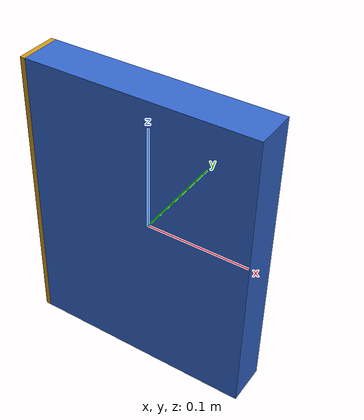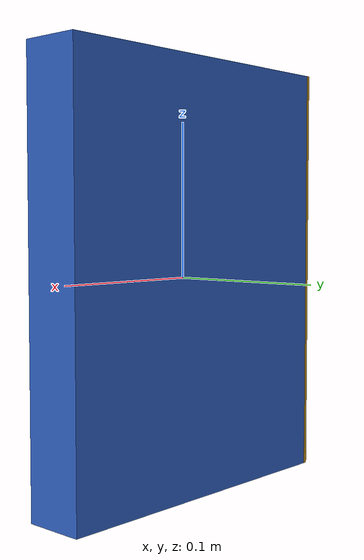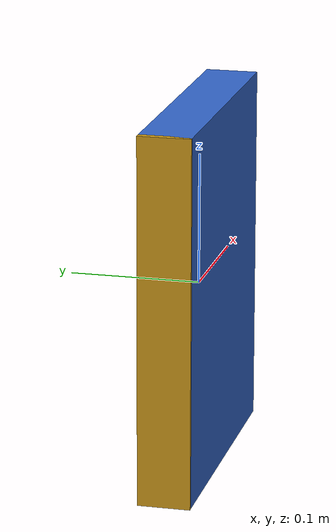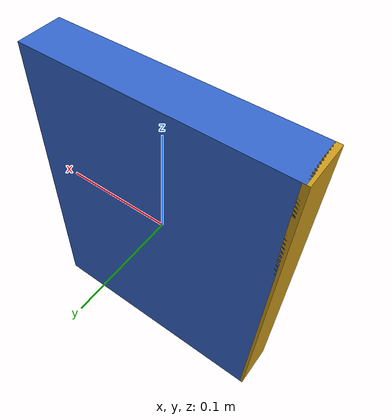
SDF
<?xml version="1.0"?>
<sdf version="1.6">
  <model name="book">
    <static>true</static>
    <link name="link">
      <pose>0 0 0 0 0 0</pose>
      <inertial>
        <mass>0.3</mass>
        <inertia>
          <ixx>0.000434</ixx><ixy>0</ixy><ixz>0</ixz>
          <iyy>0.000447</iyy><iyz>0</iyz>
          <izz>0.000033</izz>
        </inertia>
      </inertial>
      <collision name="collision">
        <geometry>
          <box><size>0.22 0.04 0.28</size></box>
        </geometry>
      </collision>
      <visual name="visual">
        <geometry>
          <box><size>0.22 0.04 0.28</size></box>
        </geometry>
        <material>
          <ambient>0.2 0.4 0.8 1</ambient>
          <diffuse>0.2 0.4 0.8 1</diffuse>
          <specular>0.1 0.1 0.1 1</specular>
        </material>
      </visual>
      <!-- Spine strip for visual contrast -->
      <visual name="spine">
        <pose>-0.11 0 0 0 0 0</pose>
        <geometry>
          <box><size>0.005 0.04 0.28</size></box>
        </geometry>
        <material>
          <ambient>0.8 0.6 0.1 1</ambient>
          <diffuse>0.8 0.6 0.1 1</diffuse>
        </material>
      </visual>
    </link>
  </model>
</sdf>
